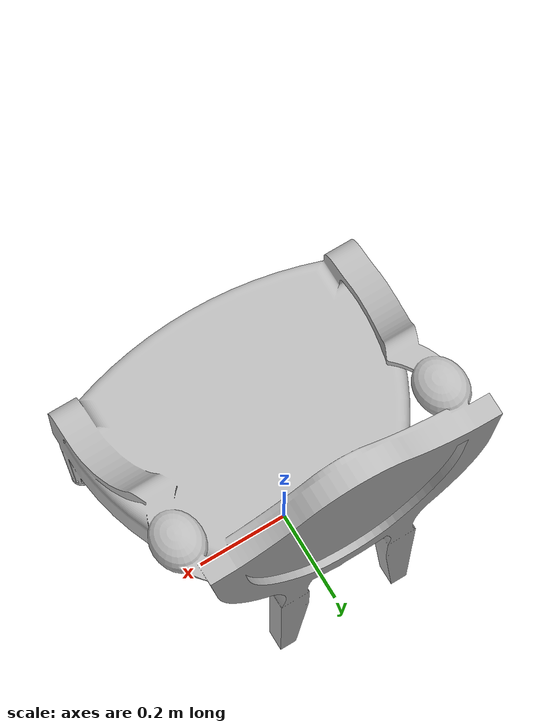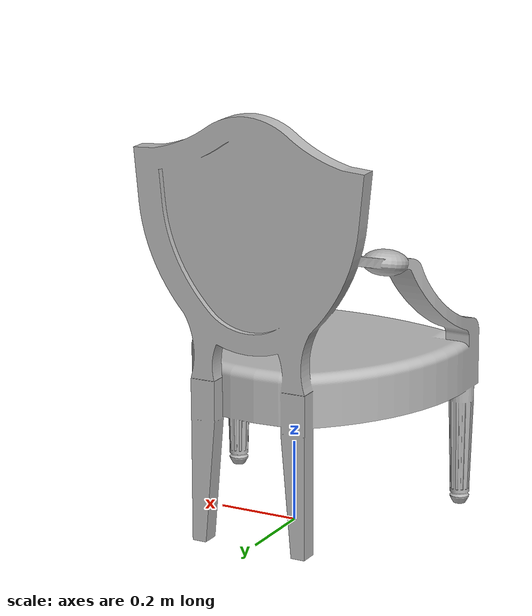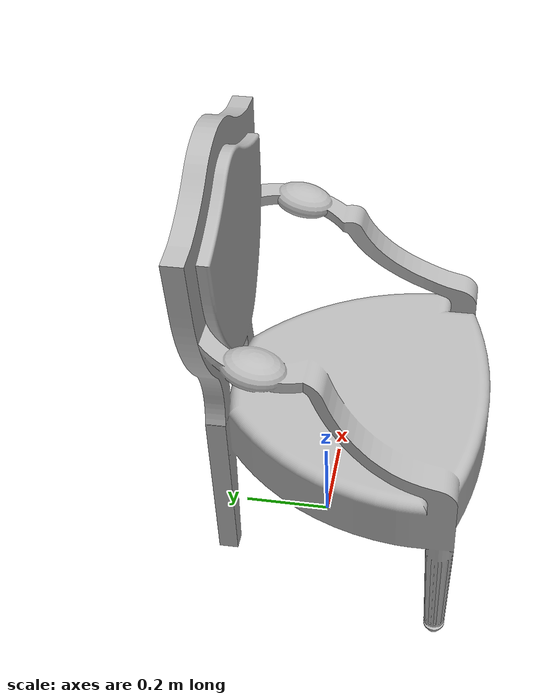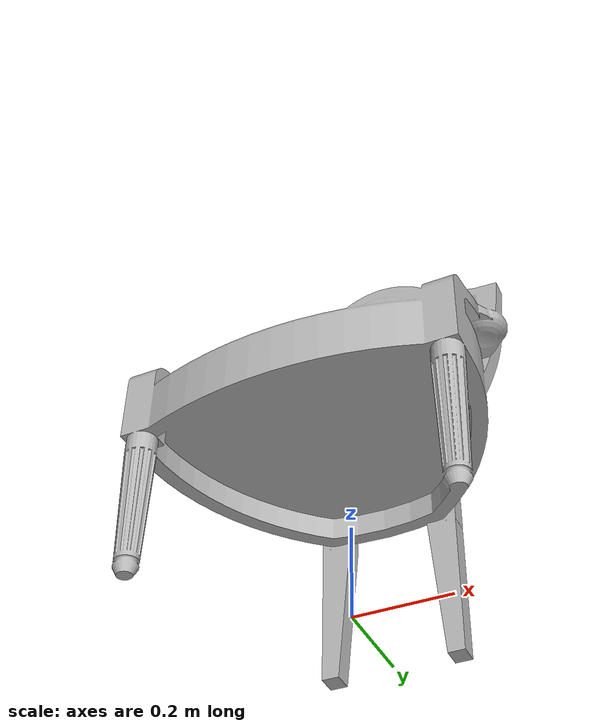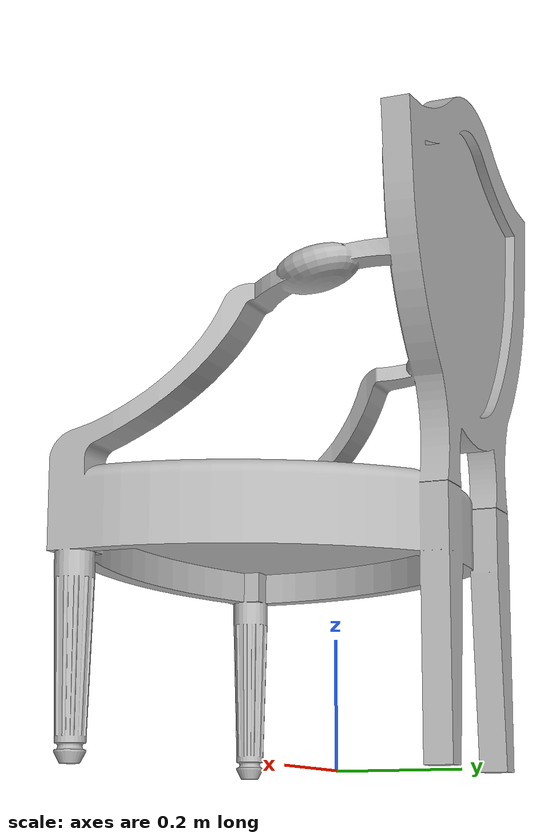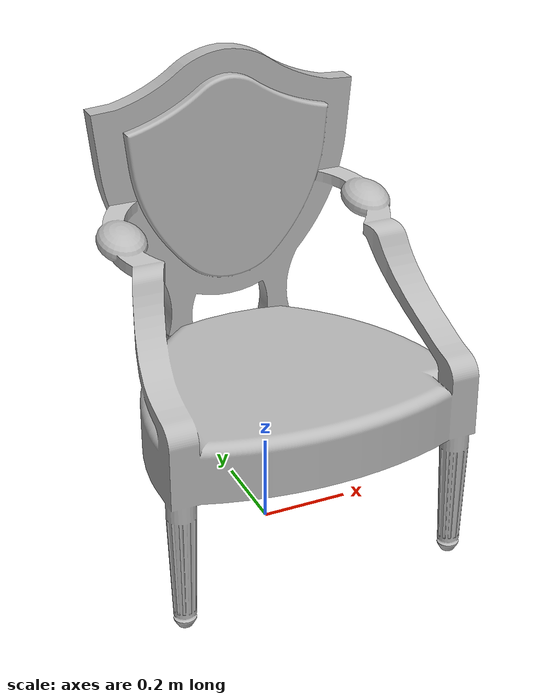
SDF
<?xml version="1.0" ?>
<sdf version="1.5">
  <model name="armchair">
    <link name="link">
      <pose>0 0 0 0 0 0</pose>
      <collision name="collision">
        <geometry>
          <mesh>
            <uri>model://armchair/meshes/model.dae</uri>
          </mesh>
        </geometry>
      </collision>
      <visual name="visual">
        <geometry>
          <mesh>
            <uri>model://armchair/meshes/model.dae</uri>
          </mesh>
        </geometry>
      </visual>
    </link>
  </model>
</sdf>
